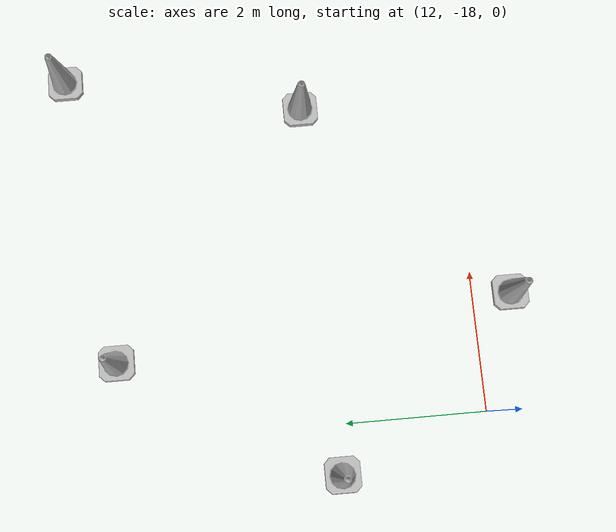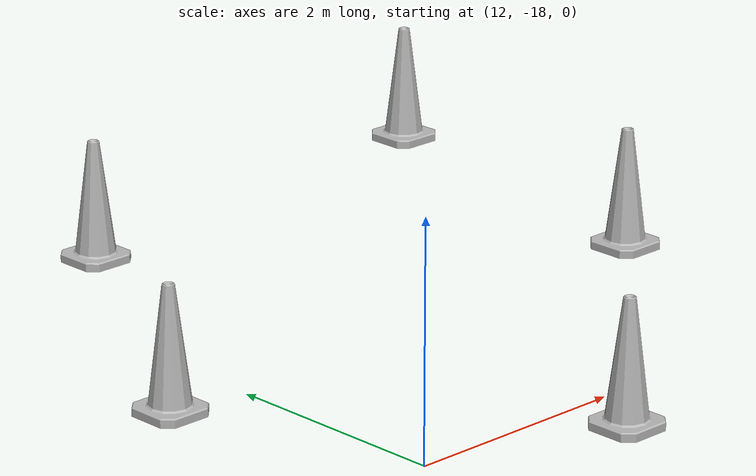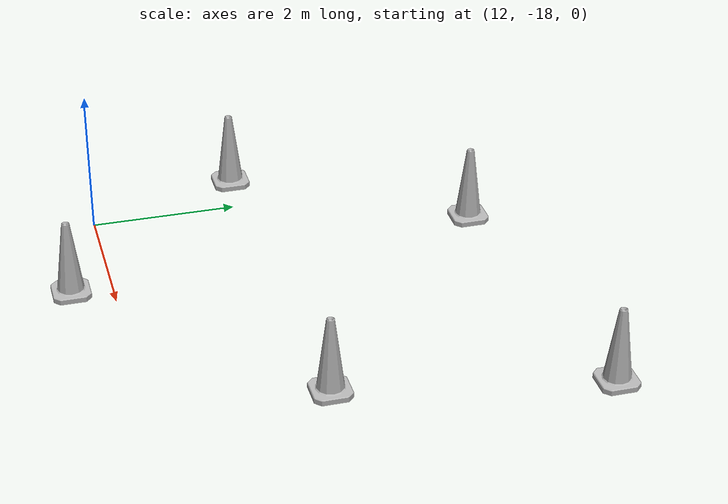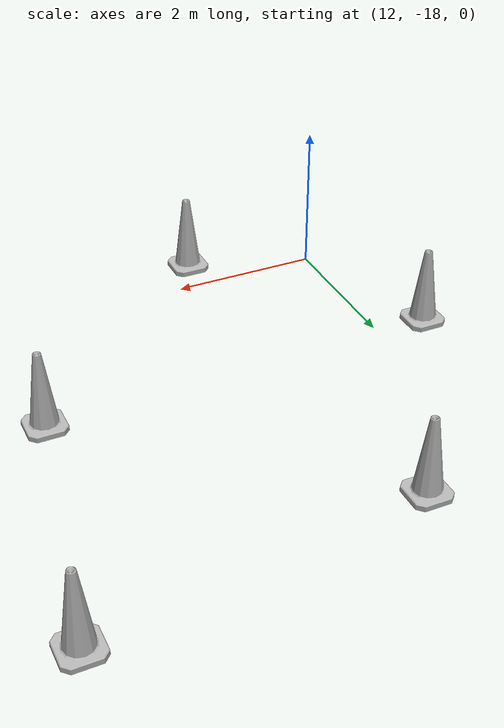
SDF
<sdf version="1.6">
 <model name="RaceTrack1">
  <link name="link_clone_33">
   <inertial>
    <inertia><ixx>1</ixx><ixy>0</ixy><ixz>0</ixz><iyy>1</iyy><iyz>0</iyz><izz>1</izz></inertia>
    <mass>1</mass>
   </inertial>
   <pose>13.1268 -12.8289 -1e-05 0 1e-06 0</pose>
   <visual name="visual">
    <geometry>
     <mesh><scale>10 10 10</scale><uri>model://construction_cone/meshes/construction_cone.dae</uri></mesh>
    </geometry>
    <material><shader type="vertex"><normal_map>__default__</normal_map></shader></material>
   </visual>
   <collision name="collision">
    <geometry>
     <mesh><uri>model://construction_cone/meshes/construction_cone.dae</uri><scale>10 10 10</scale></mesh>
    </geometry>
    <surface>
     <friction>
      <ode><mu>1</mu><mu2>1</mu2><fdir1>0 0 0</fdir1><slip1>0</slip1><slip2>0</slip2></ode>
      <torsional>
       <coefficient>1</coefficient>
       <patch_radius>0</patch_radius>
       <surface_radius>0</surface_radius>
       <use_patch_radius>1</use_patch_radius>
       <ode><slip>0</slip></ode>
      </torsional>
     </friction>
     <bounce><restitution_coefficient>0</restitution_coefficient><threshold>1e+06</threshold></bounce>
     <contact>
      <collide_without_contact>0</collide_without_contact>
      <collide_without_contact_bitmask>1</collide_without_contact_bitmask>
      <collide_bitmask>1</collide_bitmask>
      <ode>
       <soft_cfm>0</soft_cfm>
       <soft_erp>0.2</soft_erp>
       <kp>1e+13</kp>
       <kd>1</kd>
       <max_vel>0.01</max_vel>
       <min_depth>0</min_depth>
      </ode>
      <bullet>
       <split_impulse>1</split_impulse>
       <split_impulse_penetration_threshold>-0.01</split_impulse_penetration_threshold>
       <soft_cfm>0</soft_cfm>
       <soft_erp>0.2</soft_erp>
       <kp>1e+13</kp>
       <kd>1</kd>
      </bullet>
     </contact>
    </surface>
   </collision>
  </link>
  <link name="link_clone_34">
   <inertial>
    <inertia><ixx>1</ixx><ixy>0</ixy><ixz>0</ixz><iyy>1</iyy><iyz>0</iyz><izz>1</izz></inertia>
    <mass>1</mass>
   </inertial>
   <pose>17.3684 -12.3012 -1.2e-05 0 1e-06 0</pose>
   <visual name="visual">
    <geometry>
     <mesh><scale>10 10 10</scale><uri>model://construction_cone/meshes/construction_cone.dae</uri></mesh>
    </geometry>
    <material><shader type="vertex"><normal_map>__default__</normal_map></shader></material>
   </visual>
   <collision name="collision">
    <geometry>
     <mesh><uri>model://construction_cone/meshes/construction_cone.dae</uri><scale>10 10 10</scale></mesh>
    </geometry>
    <surface>
     <friction>
      <ode><mu>1</mu><mu2>1</mu2><fdir1>0 0 0</fdir1><slip1>0</slip1><slip2>0</slip2></ode>
      <torsional>
       <coefficient>1</coefficient>
       <patch_radius>0</patch_radius>
       <surface_radius>0</surface_radius>
       <use_patch_radius>1</use_patch_radius>
       <ode><slip>0</slip></ode>
      </torsional>
     </friction>
     <bounce><restitution_coefficient>0</restitution_coefficient><threshold>1e+06</threshold></bounce>
     <contact>
      <collide_without_contact>0</collide_without_contact>
      <collide_without_contact_bitmask>1</collide_without_contact_bitmask>
      <collide_bitmask>1</collide_bitmask>
      <ode>
       <soft_cfm>0</soft_cfm>
       <soft_erp>0.2</soft_erp>
       <kp>1e+13</kp>
       <kd>1</kd>
       <max_vel>0.01</max_vel>
       <min_depth>0</min_depth>
      </ode>
      <bullet>
       <split_impulse>1</split_impulse>
       <split_impulse_penetration_threshold>-0.01</split_impulse_penetration_threshold>
       <soft_cfm>0</soft_cfm>
       <soft_erp>0.2</soft_erp>
       <kp>1e+13</kp>
       <kd>1</kd>
      </bullet>
     </contact>
    </surface>
   </collision>
  </link>
  <link name="link_clone_35">
   <inertial>
    <inertia><ixx>1</ixx><ixy>0</ixy><ixz>0</ixz><iyy>1</iyy><iyz>0</iyz><izz>1</izz></inertia>
    <mass>1</mass>
   </inertial>
   <pose>11.2997 -15.8896 -9e-06 0 1e-06 0</pose>
   <visual name="visual">
    <geometry>
     <mesh><scale>10 10 10</scale><uri>model://construction_cone/meshes/construction_cone.dae</uri></mesh>
    </geometry>
    <material><shader type="vertex"><normal_map>__default__</normal_map></shader></material>
   </visual>
   <collision name="collision">
    <geometry>
     <mesh><uri>model://construction_cone/meshes/construction_cone.dae</uri><scale>10 10 10</scale></mesh>
    </geometry>
    <surface>
     <friction>
      <ode><mu>1</mu><mu2>1</mu2><fdir1>0 0 0</fdir1><slip1>0</slip1><slip2>0</slip2></ode>
      <torsional>
       <coefficient>1</coefficient>
       <patch_radius>0</patch_radius>
       <surface_radius>0</surface_radius>
       <use_patch_radius>1</use_patch_radius>
       <ode><slip>0</slip></ode>
      </torsional>
     </friction>
     <bounce><restitution_coefficient>0</restitution_coefficient><threshold>1e+06</threshold></bounce>
     <contact>
      <collide_without_contact>0</collide_without_contact>
      <collide_without_contact_bitmask>1</collide_without_contact_bitmask>
      <collide_bitmask>1</collide_bitmask>
      <ode>
       <soft_cfm>0</soft_cfm>
       <soft_erp>0.2</soft_erp>
       <kp>1e+13</kp>
       <kd>1</kd>
       <max_vel>0.01</max_vel>
       <min_depth>0</min_depth>
      </ode>
      <bullet>
       <split_impulse>1</split_impulse>
       <split_impulse_penetration_threshold>-0.01</split_impulse_penetration_threshold>
       <soft_cfm>0</soft_cfm>
       <soft_erp>0.2</soft_erp>
       <kp>1e+13</kp>
       <kd>1</kd>
      </bullet>
     </contact>
    </surface>
   </collision>
  </link>
  <link name="link_clone_36">
   <inertial>
    <inertia><ixx>1</ixx><ixy>0</ixy><ixz>0</ixz><iyy>1</iyy><iyz>0</iyz><izz>1</izz></inertia>
    <mass>1</mass>
   </inertial>
   <pose>16.6676 -15.7728 -1.2e-05 0 1e-06 0</pose>
   <visual name="visual">
    <geometry>
     <mesh><scale>10 10 10</scale><uri>model://construction_cone/meshes/construction_cone.dae</uri></mesh>
    </geometry>
    <material><shader type="vertex"><normal_map>__default__</normal_map></shader></material>
   </visual>
   <collision name="collision">
    <geometry>
     <mesh><uri>model://construction_cone/meshes/construction_cone.dae</uri><scale>10 10 10</scale></mesh>
    </geometry>
    <surface>
     <friction>
      <ode><mu>1</mu><mu2>1</mu2><fdir1>0 0 0</fdir1><slip1>0</slip1><slip2>0</slip2></ode>
      <torsional>
       <coefficient>1</coefficient>
       <patch_radius>0</patch_radius>
       <surface_radius>0</surface_radius>
       <use_patch_radius>1</use_patch_radius>
       <ode><slip>0</slip></ode>
      </torsional>
     </friction>
     <bounce><restitution_coefficient>0</restitution_coefficient><threshold>1e+06</threshold></bounce>
     <contact>
      <collide_without_contact>0</collide_without_contact>
      <collide_without_contact_bitmask>1</collide_without_contact_bitmask>
      <collide_bitmask>1</collide_bitmask>
      <ode>
       <soft_cfm>0</soft_cfm>
       <soft_erp>0.2</soft_erp>
       <kp>1e+13</kp>
       <kd>1</kd>
       <max_vel>0.01</max_vel>
       <min_depth>0</min_depth>
      </ode>
      <bullet>
       <split_impulse>1</split_impulse>
       <split_impulse_penetration_threshold>-0.01</split_impulse_penetration_threshold>
       <soft_cfm>0</soft_cfm>
       <soft_erp>0.2</soft_erp>
       <kp>1e+13</kp>
       <kd>1</kd>
      </bullet>
     </contact>
    </surface>
   </collision>
  </link>
  <link name="link_clone_37">
   <inertial>
    <inertia><ixx>1</ixx><ixy>0</ixy><ixz>0</ixz><iyy>1</iyy><iyz>0</iyz><izz>1</izz></inertia>
    <mass>1</mass>
   </inertial>
   <pose>13.6622 -18.5478 -1.1e-05 0 1e-06 0</pose>
   <visual name="visual">
    <geometry>
     <mesh><scale>10 10 10</scale><uri>model://construction_cone/meshes/construction_cone.dae</uri></mesh>
    </geometry>
    <material><shader type="vertex"><normal_map>__default__</normal_map></shader></material>
   </visual>
   <collision name="collision">
    <geometry>
     <mesh><uri>model://construction_cone/meshes/construction_cone.dae</uri><scale>10 10 10</scale></mesh>
    </geometry>
    <surface>
     <friction>
      <ode><mu>1</mu><mu2>1</mu2><fdir1>0 0 0</fdir1><slip1>0</slip1><slip2>0</slip2></ode>
      <torsional>
       <coefficient>1</coefficient>
       <patch_radius>0</patch_radius>
       <surface_radius>0</surface_radius>
       <use_patch_radius>1</use_patch_radius>
       <ode><slip>0</slip></ode>
      </torsional>
     </friction>
     <bounce><restitution_coefficient>0</restitution_coefficient><threshold>1e+06</threshold></bounce>
     <contact>
      <collide_without_contact>0</collide_without_contact>
      <collide_without_contact_bitmask>1</collide_without_contact_bitmask>
      <collide_bitmask>1</collide_bitmask>
      <ode>
       <soft_cfm>0</soft_cfm>
       <soft_erp>0.2</soft_erp>
       <kp>1e+13</kp>
       <kd>1</kd>
       <max_vel>0.01</max_vel>
       <min_depth>0</min_depth>
      </ode>
      <bullet>
       <split_impulse>1</split_impulse>
       <split_impulse_penetration_threshold>-0.01</split_impulse_penetration_threshold>
       <soft_cfm>0</soft_cfm>
       <soft_erp>0.2</soft_erp>
       <kp>1e+13</kp>
       <kd>1</kd>
      </bullet>
     </contact>
    </surface>
   </collision>
  </link>
  <static>1</static>
 </model>
</sdf>
